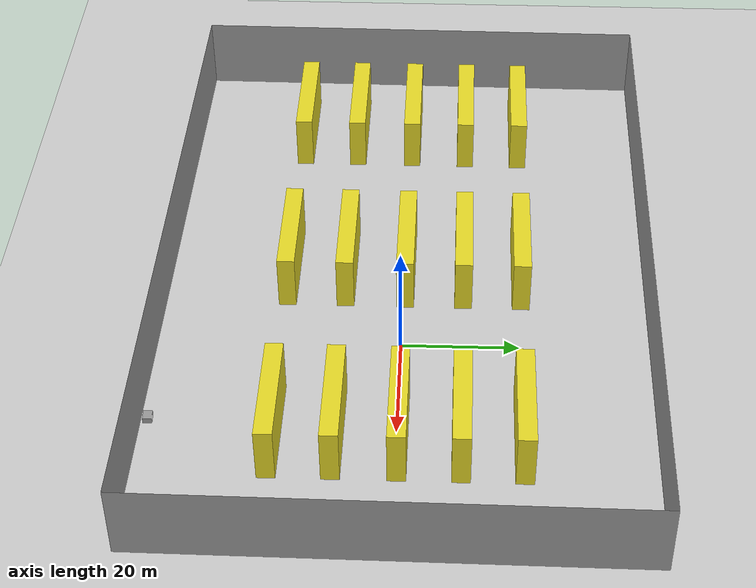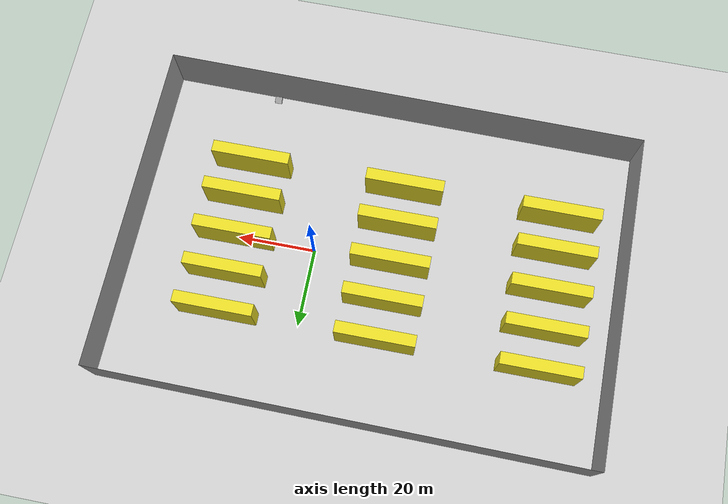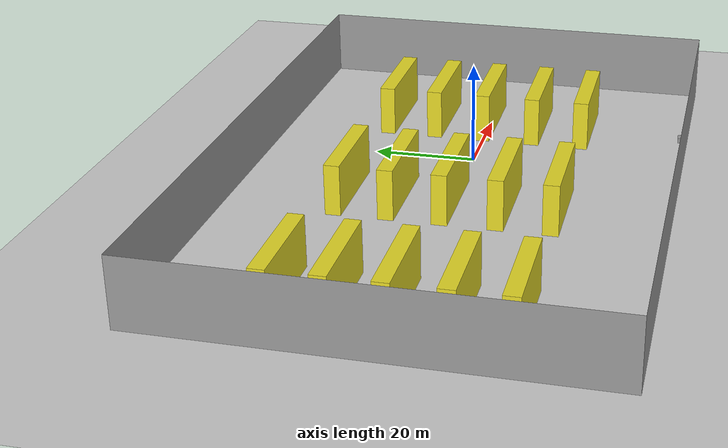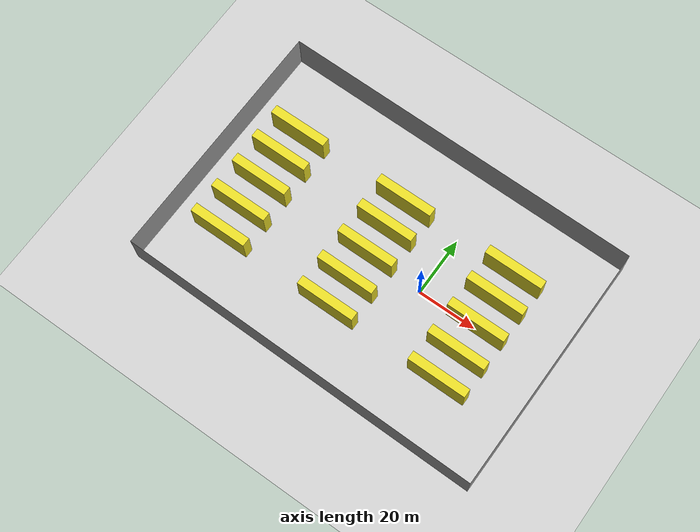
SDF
<sdf version="1.7">
 <world name="default">
  <light name="sun" type="directional">
   <pose>0 0 10 0 -0 0</pose>
   <diffuse>0.8 0.8 0.8 1</diffuse>
   <specular>0.2 0.2 0.2 1</specular>
   <attenuation>
    <range>1000</range>
    <constant>0.9</constant>
    <linear>0.01</linear>
    <quadratic>0.001</quadratic>
   </attenuation>
   <direction>-0.5 0.1 -0.9</direction>
   <spot><inner_angle>0</inner_angle><outer_angle>0</outer_angle><falloff>0</falloff></spot>
  </light>
  <model name="ground_plane">
   <static>1</static>
   <link name="link">
    <collision name="collision">
     <geometry><plane><normal>0 0 1</normal><size>100 100</size></plane></geometry>
     <surface><friction><ode><mu>100</mu><mu2>50</mu2></ode></friction></surface>
    </collision>
    <visual name="visual">
     <cast_shadows>0</cast_shadows>
     <geometry><plane><normal>0 0 1</normal><size>100 100</size></plane></geometry>
     <material>
      <script><uri>file://media/materials/scripts/gazebo.material</uri><name>Gazebo/Grey</name></script>
     </material>
    </visual>
   </link>
  </model>
  <gravity>0 0 -9.8</gravity>
  <magnetic_field>6e-06 2.3e-05 -4.2e-05</magnetic_field>
  <atmosphere type="adiabatic"/>
  <physics type="ode">
   <max_step_size>0.001</max_step_size>
   <real_time_factor>1</real_time_factor>
   <real_time_update_rate>1000</real_time_update_rate>
  </physics>
  <scene><ambient>0.4 0.4 0.4 1</ambient><background>0.7 0.7 0.7 1</background><shadows>1</shadows></scene>
  <spherical_coordinates>
   <surface_model>EARTH_WGS84</surface_model>
   <latitude_deg>0</latitude_deg>
   <longitude_deg>0</longitude_deg>
   <elevation>0</elevation>
   <heading_deg>0</heading_deg>
  </spherical_coordinates>
  <model name="Walls">
   <link name="link_0">
    <inertial>
     <mass>1</mass>
     <inertia>
      <ixx>0.166667</ixx>
      <ixy>0</ixy>
      <ixz>0</ixz>
      <iyy>0.166667</iyy>
      <iyz>0</iyz>
      <izz>0.166667</izz>
     </inertia>
    </inertial>
    <pose>0 -0 0 0 -0 1.59401</pose>
    <visual name="visual">
     <geometry>
      <mesh><uri>/home/naci/dev_ws/src/amr_sim_pkg/meshes/walls.dae</uri><scale>1 1 1</scale></mesh>
     </geometry>
     <material>
      <lighting>1</lighting>
      <script><uri>file://media/materials/scripts/gazebo.material</uri><name>Gazebo/Grey</name></script>
      <shader type="pixel"><normal_map>__default__</normal_map></shader>
      <emissive>0 0 0 1</emissive>
     </material>
    </visual>
    <collision name="collision">
     <geometry>
      <mesh><uri>/home/naci/dev_ws/src/amr_sim_pkg/meshes/walls.dae</uri><scale>1 1 1</scale></mesh>
     </geometry>
     <surface>
      <friction>
       <ode><mu>1</mu><mu2>1</mu2><fdir1>0 0 0</fdir1><slip1>0</slip1><slip2>0</slip2></ode>
       <torsional>
        <coefficient>1</coefficient>
        <patch_radius>0</patch_radius>
        <surface_radius>0</surface_radius>
        <use_patch_radius>1</use_patch_radius>
        <ode><slip>0</slip></ode>
       </torsional>
      </friction>
      <bounce><restitution_coefficient>0</restitution_coefficient><threshold>1e+06</threshold></bounce>
      <contact>
       <collide_without_contact>0</collide_without_contact>
       <collide_without_contact_bitmask>1</collide_without_contact_bitmask>
       <collide_bitmask>1</collide_bitmask>
       <ode>
        <soft_cfm>0</soft_cfm>
        <soft_erp>0.2</soft_erp>
        <kp>1e+13</kp>
        <kd>1</kd>
        <max_vel>0.01</max_vel>
        <min_depth>0</min_depth>
       </ode>
       <bullet>
        <split_impulse>1</split_impulse>
        <split_impulse_penetration_threshold>-0.01</split_impulse_penetration_threshold>
        <soft_cfm>0</soft_cfm>
        <soft_erp>0.2</soft_erp>
        <kp>1e+13</kp>
        <kd>1</kd>
       </bullet>
      </contact>
     </surface>
    </collision>
   </link>
   <static>1</static>
   <pose>-15.4422 0.509978 6.50765 0 -0 1.5385</pose>
  </model>
  <model name="WarehouseShelves">
   <link name="link_0">
    <inertial>
     <mass>1</mass>
     <inertia>
      <ixx>0.166667</ixx>
      <ixy>0</ixy>
      <ixz>0</ixz>
      <iyy>0.166667</iyy>
      <iyz>0</iyz>
      <izz>0.166667</izz>
     </inertia>
    </inertial>
    <pose>0 0 -3e-06 0 -0 0</pose>
    <visual name="visual">
     <geometry>
      <mesh><uri>/home/naci/dev_ws/src/amr_sim_pkg/meshes/wr_shelves.dae</uri><scale>1 1 1</scale></mesh>
     </geometry>
     <material>
      <lighting>1</lighting>
      <script><uri>file://media/materials/scripts/gazebo.material</uri><name>Gazebo/Yellow</name></script>
      <shader type="pixel"><normal_map>__default__</normal_map></shader>
      <ambient>0.3 0.3 0.3 1</ambient>
      <diffuse>0.7 0.7 0.7 1</diffuse>
      <specular>0.01 0.01 0.01 1</specular>
      <emissive>0 0 0 1</emissive>
     </material>
     <cast_shadows>0</cast_shadows>
    </visual>
    <collision name="collision">
     <geometry>
      <mesh><uri>/home/naci/dev_ws/src/amr_sim_pkg/meshes/wr_shelves.dae</uri><scale>1 1 1</scale></mesh>
     </geometry>
     <surface>
      <friction>
       <ode><mu>1</mu><mu2>1</mu2><fdir1>0 0 0</fdir1><slip1>0</slip1><slip2>0</slip2></ode>
       <torsional>
        <coefficient>1</coefficient>
        <patch_radius>0</patch_radius>
        <surface_radius>0</surface_radius>
        <use_patch_radius>1</use_patch_radius>
        <ode><slip>0</slip></ode>
       </torsional>
      </friction>
      <bounce><restitution_coefficient>0</restitution_coefficient><threshold>1e+06</threshold></bounce>
      <contact>
       <collide_without_contact>0</collide_without_contact>
       <collide_without_contact_bitmask>1</collide_without_contact_bitmask>
       <collide_bitmask>1</collide_bitmask>
       <ode>
        <soft_cfm>0</soft_cfm>
        <soft_erp>0.2</soft_erp>
        <kp>1e+13</kp>
        <kd>1</kd>
        <max_vel>0.01</max_vel>
        <min_depth>0</min_depth>
       </ode>
       <bullet>
        <split_impulse>1</split_impulse>
        <split_impulse_penetration_threshold>-0.01</split_impulse_penetration_threshold>
        <soft_cfm>0</soft_cfm>
        <soft_erp>0.2</soft_erp>
        <kp>1e+13</kp>
        <kd>1</kd>
       </bullet>
      </contact>
     </surface>
    </collision>
   </link>
   <static>1</static>
   <pose>-19.7436 0.36864 4.77829 0 -0 0</pose>
  </model>
  <model name="ChargingStation">
   <link name="link_0">
    <inertial>
     <mass>1</mass>
     <inertia>
      <ixx>0.166667</ixx>
      <ixy>0</ixy>
      <ixz>0</ixz>
      <iyy>0.166667</iyy>
      <iyz>0</iyz>
      <izz>0.166667</izz>
     </inertia>
    </inertial>
    <visual name="visual">
     <geometry>
      <mesh><uri>/home/naci/dev_ws/src/amr_sim_pkg/meshes/charging_station.dae</uri><scale>1 1 1</scale></mesh>
     </geometry>
     <material>
      <lighting>1</lighting>
      <script><uri>file://media/materials/scripts/gazebo.material</uri><name>Gazebo/Grey</name></script>
      <shader type="pixel"><normal_map>__default__</normal_map></shader>
     </material>
    </visual>
    <collision name="collision">
     <geometry>
      <mesh><uri>/home/naci/dev_ws/src/amr_sim_pkg/meshes/charging_station.dae</uri><scale>1 1 1</scale></mesh>
     </geometry>
     <surface>
      <friction>
       <ode><mu>1</mu><mu2>1</mu2><fdir1>0 0 0</fdir1><slip1>0</slip1><slip2>0</slip2></ode>
       <torsional>
        <coefficient>1</coefficient>
        <patch_radius>0</patch_radius>
        <surface_radius>0</surface_radius>
        <use_patch_radius>1</use_patch_radius>
        <ode><slip>0</slip></ode>
       </torsional>
      </friction>
      <bounce><restitution_coefficient>0</restitution_coefficient><threshold>1e+06</threshold></bounce>
      <contact>
       <collide_without_contact>0</collide_without_contact>
       <collide_without_contact_bitmask>1</collide_without_contact_bitmask>
       <collide_bitmask>1</collide_bitmask>
       <ode>
        <soft_cfm>0</soft_cfm>
        <soft_erp>0.2</soft_erp>
        <kp>1e+13</kp>
        <kd>1</kd>
        <max_vel>0.01</max_vel>
        <min_depth>0</min_depth>
       </ode>
       <bullet>
        <split_impulse>1</split_impulse>
        <split_impulse_penetration_threshold>-0.01</split_impulse_penetration_threshold>
        <soft_cfm>0</soft_cfm>
        <soft_erp>0.2</soft_erp>
        <kp>1e+13</kp>
        <kd>1</kd>
       </bullet>
      </contact>
     </surface>
    </collision>
   </link>
   <static>1</static>
   <pose>18.4537 -40.1927 0.488741 0 0 -3.09224</pose>
  </model>
 </world>
</sdf>
